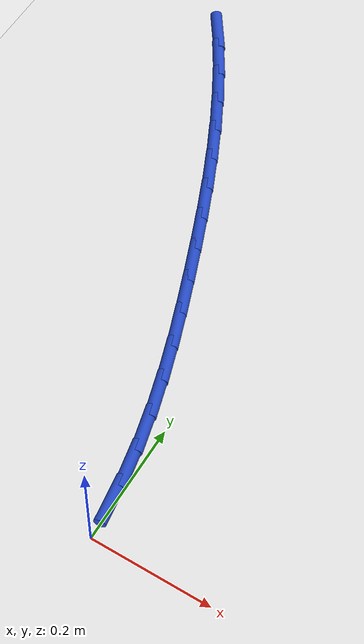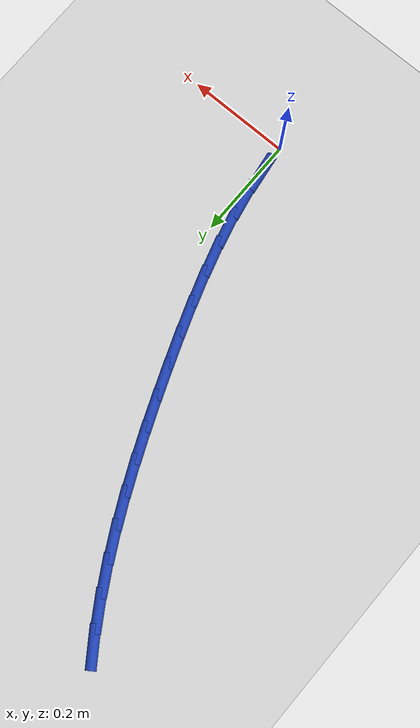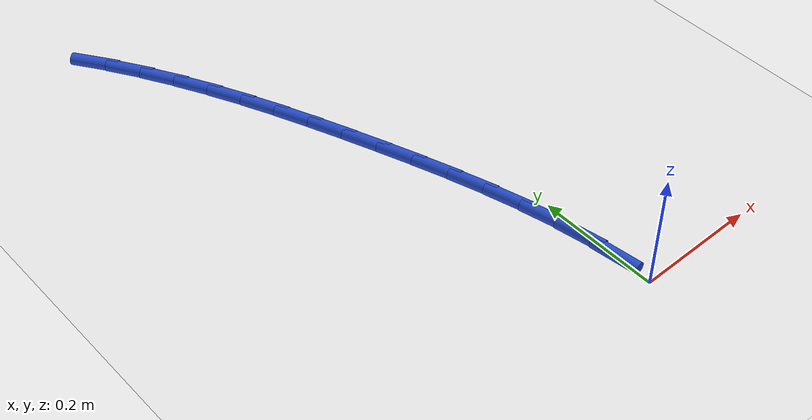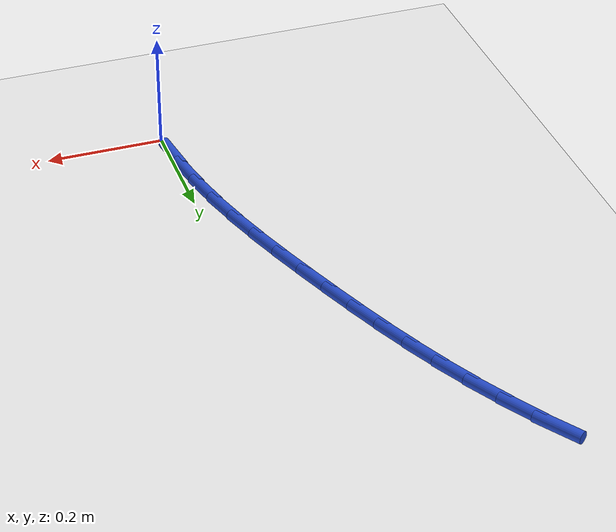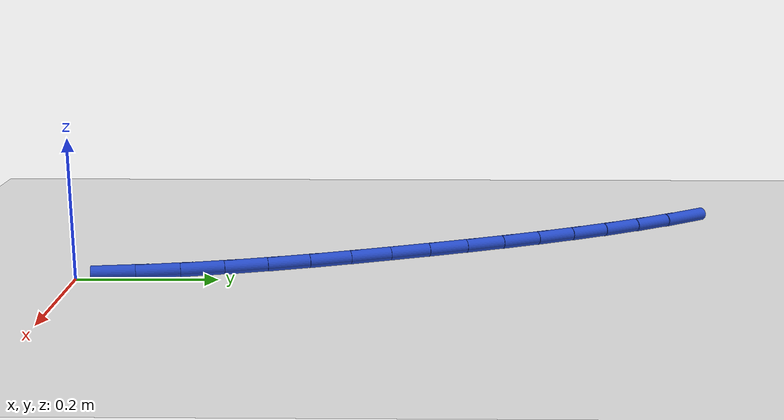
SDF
<sdf version="1.6">
 <world name="default">
  <model name="ground_plane">
   <static>1</static>
   <link name="link">
    <collision name="collision">
     <geometry><plane><normal>0 0 1</normal><size>100 100</size></plane></geometry>
     <surface><friction><ode><mu>100</mu><mu2>50</mu2></ode></friction></surface>
    </collision>
    <visual name="visual">
     <cast_shadows>0</cast_shadows>
     <geometry><plane><normal>0 0 1</normal><size>100 100</size></plane></geometry>
     <material>
      <script><uri>file://media/materials/scripts/gazebo.material</uri><name>Gazebo/WhiteGlow</name></script>
     </material>
    </visual>
   </link>
  </model>
  <model name="line">
   <link name="link_1">
    <pose>-0.004488351854638754 0.0616274276486129 0.01 0 1.57 -1.4325367551831256</pose>
    <collision name="collision">
     <geometry><cylinder><radius>0.01</radius><length>0.08</length></cylinder></geometry>
    </collision>
    <visual name="visual">
     <material>
      <script><name>Gazebo/Blue</name><uri>file://media/materials/scripts/gazebo.material</uri></script>
     </material>
     <geometry><cylinder><radius>0.01</radius><length>0.08</length></cylinder></geometry>
    </visual>
   </link>
   <link name="link_2">
    <pose>-0.01296455758219954 0.12254275607029155 0.01 0 1.57 -1.3751089486896657</pose>
    <collision name="collision">
     <geometry><cylinder><radius>0.01</radius><length>0.08</length></cylinder></geometry>
    </collision>
    <visual name="visual">
     <material>
      <script><name>Gazebo/Blue</name><uri>file://media/materials/scripts/gazebo.material</uri></script>
     </material>
     <geometry><cylinder><radius>0.01</radius><length>0.08</length></cylinder></geometry>
    </visual>
   </link>
   <link name="link_3">
    <pose>-0.02490119986159216 0.1827606736795642 0.01 0 1.57 -1.3260411689486429</pose>
    <collision name="collision">
     <geometry><cylinder><radius>0.01</radius><length>0.08</length></cylinder></geometry>
    </collision>
    <visual name="visual">
     <material>
      <script><name>Gazebo/Blue</name><uri>file://media/materials/scripts/gazebo.material</uri></script>
     </material>
     <geometry><cylinder><radius>0.01</radius><length>0.08</length></cylinder></geometry>
    </visual>
   </link>
   <link name="link_4">
    <pose>-0.03977086137172645 0.24229586889095905 0.01 0 1.57 -1.2853486170451522</pose>
    <collision name="collision">
     <geometry><cylinder><radius>0.01</radius><length>0.08</length></cylinder></geometry>
    </collision>
    <visual name="visual">
     <material>
      <script><name>Gazebo/Blue</name><uri>file://media/materials/scripts/gazebo.material</uri></script>
     </material>
     <geometry><cylinder><radius>0.01</radius><length>0.08</length></cylinder></geometry>
    </visual>
   </link>
   <link name="link_5">
    <pose>-0.05704612479151218 0.3011630301190043 0.01 0 1.57 -1.2529337377529255</pose>
    <collision name="collision">
     <geometry><cylinder><radius>0.01</radius><length>0.08</length></cylinder></geometry>
    </collision>
    <visual name="visual">
     <material>
      <script><name>Gazebo/Blue</name><uri>file://media/materials/scripts/gazebo.material</uri></script>
     </material>
     <geometry><cylinder><radius>0.01</radius><length>0.08</length></cylinder></geometry>
    </visual>
   </link>
   <link name="link_6">
    <pose>-0.07619957279985923 0.3593768457782284 0.01 0 1.57 -1.2286713545116776</pose>
    <collision name="collision">
     <geometry><cylinder><radius>0.01</radius><length>0.08</length></cylinder></geometry>
    </collision>
    <visual name="visual">
     <material>
      <script><name>Gazebo/Blue</name><uri>file://media/materials/scripts/gazebo.material</uri></script>
     </material>
     <geometry><cylinder><radius>0.01</radius><length>0.08</length></cylinder></geometry>
    </visual>
   </link>
   <link name="link_7">
    <pose>-0.09670378807567728 0.41695200428315937 0.01 0 1.57 -1.2124652872639519</pose>
    <collision name="collision">
     <geometry><cylinder><radius>0.01</radius><length>0.08</length></cylinder></geometry>
    </collision>
    <visual name="visual">
     <material>
      <script><name>Gazebo/Blue</name><uri>file://media/materials/scripts/gazebo.material</uri></script>
     </material>
     <geometry><cylinder><radius>0.01</radius><length>0.08</length></cylinder></geometry>
    </visual>
   </link>
   <link name="link_8">
    <pose>-0.11803192694594503 0.4739031844194345 0.01 0 1.57 -1.2010539235979718</pose>
    <collision name="collision">
     <geometry><cylinder><radius>0.01</radius><length>0.08</length></cylinder></geometry>
    </collision>
    <visual name="visual">
     <material>
      <script><name>Gazebo/Blue</name><uri>file://media/materials/scripts/gazebo.material</uri></script>
     </material>
     <geometry><cylinder><radius>0.01</radius><length>0.08</length></cylinder></geometry>
    </visual>
   </link>
   <link name="link_9">
    <pose>-0.13986680772696478 0.5302415457199778 0.01 0 1.57 -1.1863639329954192</pose>
    <collision name="collision">
     <geometry><cylinder><radius>0.01</radius><length>0.08</length></cylinder></geometry>
    </collision>
    <visual name="visual">
     <material>
      <script><name>Gazebo/Blue</name><uri>file://media/materials/scripts/gazebo.material</uri></script>
     </material>
     <geometry><cylinder><radius>0.01</radius><length>0.08</length></cylinder></geometry>
    </visual>
   </link>
   <link name="link_10">
    <pose>-0.1624121864860897 0.5859695035881787 0.01 0 1.57 -1.1671789930449203</pose>
    <collision name="collision">
     <geometry><cylinder><radius>0.01</radius><length>0.08</length></cylinder></geometry>
    </collision>
    <visual name="visual">
     <material>
      <script><name>Gazebo/Blue</name><uri>file://media/materials/scripts/gazebo.material</uri></script>
     </material>
     <geometry><cylinder><radius>0.01</radius><length>0.08</length></cylinder></geometry>
    </visual>
   </link>
   <link name="link_11">
    <pose>-0.1859513554610233 0.6410881383838911 0.01 0 1.57 -1.1435790756735227</pose>
    <collision name="collision">
     <geometry><cylinder><radius>0.01</radius><length>0.08</length></cylinder></geometry>
    </collision>
    <visual name="visual">
     <material>
      <script><name>Gazebo/Blue</name><uri>file://media/materials/scripts/gazebo.material</uri></script>
     </material>
     <geometry><cylinder><radius>0.01</radius><length>0.08</length></cylinder></geometry>
    </visual>
   </link>
   <link name="link_12">
    <pose>-0.210767606889469 0.6955985304669704 0.01 0 1.57 -1.1157187199856888</pose>
    <collision name="collision">
     <geometry><cylinder><radius>0.01</radius><length>0.08</length></cylinder></geometry>
    </collision>
    <visual name="visual">
     <material>
      <script><name>Gazebo/Blue</name><uri>file://media/materials/scripts/gazebo.material</uri></script>
     </material>
     <geometry><cylinder><radius>0.01</radius><length>0.08</length></cylinder></geometry>
    </visual>
   </link>
   <link name="link_13">
    <pose>-0.23714423300913007 0.7495017601972703 0.01 0 1.57 -1.0838361897167856</pose>
    <collision name="collision">
     <geometry><cylinder><radius>0.01</radius><length>0.08</length></cylinder></geometry>
    </collision>
    <visual name="visual">
     <material>
      <script><name>Gazebo/Blue</name><uri>file://media/materials/scripts/gazebo.material</uri></script>
     </material>
     <geometry><cylinder><radius>0.01</radius><length>0.08</length></cylinder></geometry>
    </visual>
   </link>
   <link name="link_14">
    <pose>-0.2653645260577101 0.8027989079346464 0.01 0 1.57 -1.048259638633462</pose>
    <collision name="collision">
     <geometry><cylinder><radius>0.01</radius><length>0.08</length></cylinder></geometry>
    </collision>
    <visual name="visual">
     <material>
      <script><name>Gazebo/Blue</name><uri>file://media/materials/scripts/gazebo.material</uri></script>
     </material>
     <geometry><cylinder><radius>0.01</radius><length>0.08</length></cylinder></geometry>
    </visual>
   </link>
   <link name="link_15">
    <pose>-0.29571177827291223 0.855491054038952 0.01 0 1.57 -1.0094081755474635</pose>
    <collision name="collision">
     <geometry><cylinder><radius>0.01</radius><length>0.08</length></cylinder></geometry>
    </collision>
    <visual name="visual">
     <material>
      <script><name>Gazebo/Blue</name><uri>file://media/materials/scripts/gazebo.material</uri></script>
     </material>
     <geometry><cylinder><radius>0.01</radius><length>0.08</length></cylinder></geometry>
    </visual>
   </link>
   <link name="link_16">
    <pose>-0.32846928189243996 0.9075792788700425 0.01 0 1.57 -0.9677859742030122</pose>
    <collision name="collision">
     <geometry><cylinder><radius>0.01</radius><length>0.08</length></cylinder></geometry>
    </collision>
    <visual name="visual">
     <material>
      <script><name>Gazebo/Blue</name><uri>file://media/materials/scripts/gazebo.material</uri></script>
     </material>
     <geometry><cylinder><radius>0.01</radius><length>0.08</length></cylinder></geometry>
    </visual>
   </link>
  </model>
 </world>
</sdf>
